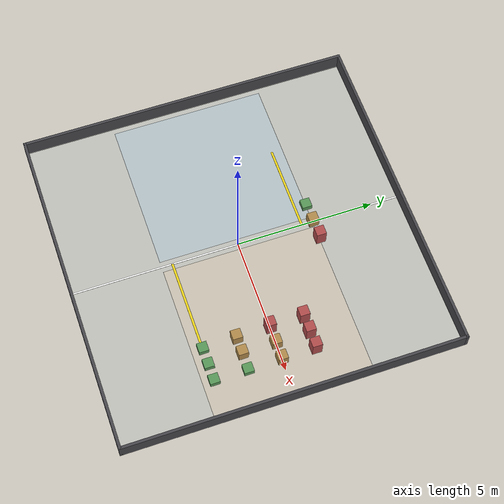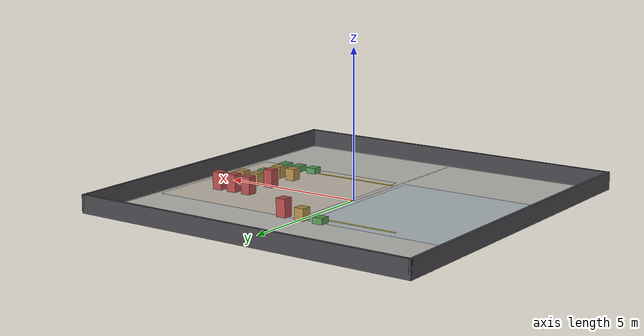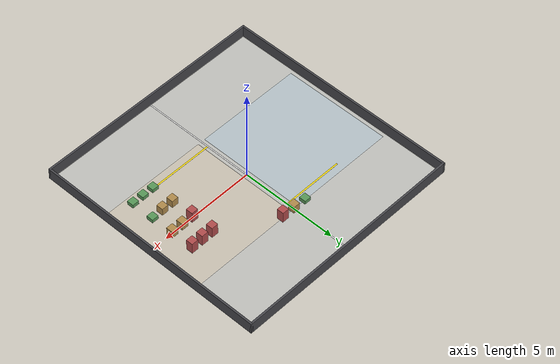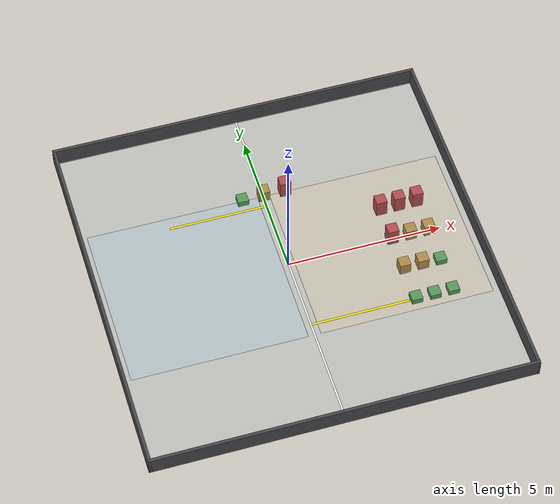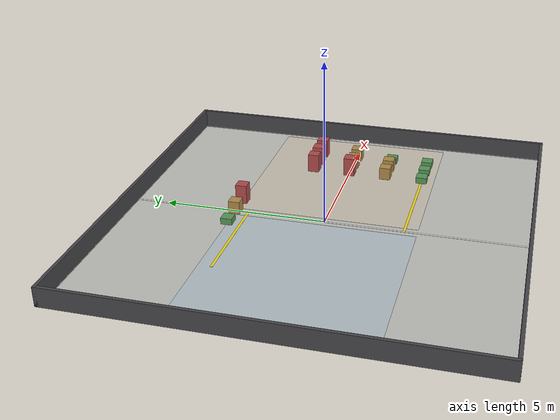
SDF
<?xml version="1.0" ?>
<sdf version="1.9">
  <world name="robotcon_2026_arena">
    <plugin filename="gz-sim-physics-system" name="gz::sim::systems::Physics"/>
    <plugin filename="gz-sim-user-commands-system" name="gz::sim::systems::UserCommands"/>
    <plugin filename="gz-sim-scene-broadcaster-system" name="gz::sim::systems::SceneBroadcaster"/>
    <plugin filename="gz-sim-sensors-system" name="gz::sim::systems::Sensors"/>
    <plugin filename="gz-sim-imu-system" name="gz::sim::systems::Imu"/>

    <gravity>0 0 -9.81</gravity>

    <!-- Arena floor: 12m x 12m -->
    <model name="arena_floor">
      <static>true</static>
      <link name="floor_link">
        <collision name="floor_collision">
          <geometry>
            <plane>
              <normal>0 0 1</normal>
              <size>12 12</size>
            </plane>
          </geometry>
        </collision>
        <visual name="floor_visual">
          <geometry>
            <plane>
              <normal>0 0 1</normal>
              <size>12 12</size>
            </plane>
          </geometry>
          <material>
            <ambient>0.76 0.76 0.74 1</ambient>
            <diffuse>0.76 0.76 0.74 1</diffuse>
            <specular>0.1 0.1 0.1 1</specular>
          </material>
        </visual>
      </link>
    </model>

    <!-- Markings and one-way guides (visual only) -->
    <model name="arena_markings">
      <static>true</static>
      <link name="markings_link">
        <visual name="left_zone">
          <pose>-3.0 0 0.002 0 0 0</pose>
          <geometry>
            <box>
              <size>5.6 5.6 0.002</size>
            </box>
          </geometry>
          <material>
            <ambient>0.72 0.82 0.88 0.5</ambient>
            <diffuse>0.72 0.82 0.88 0.5</diffuse>
          </material>
        </visual>
        <visual name="right_zone">
          <pose>3.0 0 0.002 0 0 0</pose>
          <geometry>
            <box>
              <size>5.6 5.6 0.002</size>
            </box>
          </geometry>
          <material>
            <ambient>0.88 0.82 0.72 0.5</ambient>
            <diffuse>0.88 0.82 0.72 0.5</diffuse>
          </material>
        </visual>
        <visual name="center_line">
          <pose>0 0 0.003 0 0 0</pose>
          <geometry>
            <box>
              <size>0.06 12 0.003</size>
            </box>
          </geometry>
          <material>
            <ambient>1 1 1 1</ambient>
            <diffuse>1 1 1 1</diffuse>
          </material>
        </visual>
        <visual name="one_way_lane_left">
          <pose>-1.6 2.4 0.003 0 0 0</pose>
          <geometry>
            <box>
              <size>3.2 0.08 0.003</size>
            </box>
          </geometry>
          <material>
            <ambient>0.95 0.85 0.1 1</ambient>
            <diffuse>0.95 0.85 0.1 1</diffuse>
          </material>
        </visual>
        <visual name="one_way_lane_right">
          <pose>1.6 -2.4 0.003 0 0 0</pose>
          <geometry>
            <box>
              <size>3.2 0.08 0.003</size>
            </box>
          </geometry>
          <material>
            <ambient>0.95 0.85 0.1 1</ambient>
            <diffuse>0.95 0.85 0.1 1</diffuse>
          </material>
        </visual>
      </link>
    </model>

    <!-- Arena fences -->
    <model name="arena_walls">
      <static>true</static>
      <link name="walls_link">
        <collision name="north_collision">
          <pose>0 6.05 0.30 0 0 0</pose>
          <geometry>
            <box>
              <size>12.2 0.10 0.60</size>
            </box>
          </geometry>
        </collision>
        <visual name="north_visual">
          <pose>0 6.05 0.30 0 0 0</pose>
          <geometry>
            <box>
              <size>12.2 0.10 0.60</size>
            </box>
          </geometry>
          <material>
            <ambient>0.28 0.28 0.30 1</ambient>
            <diffuse>0.28 0.28 0.30 1</diffuse>
          </material>
        </visual>

        <collision name="south_collision">
          <pose>0 -6.05 0.30 0 0 0</pose>
          <geometry>
            <box>
              <size>12.2 0.10 0.60</size>
            </box>
          </geometry>
        </collision>
        <visual name="south_visual">
          <pose>0 -6.05 0.30 0 0 0</pose>
          <geometry>
            <box>
              <size>12.2 0.10 0.60</size>
            </box>
          </geometry>
          <material>
            <ambient>0.28 0.28 0.30 1</ambient>
            <diffuse>0.28 0.28 0.30 1</diffuse>
          </material>
        </visual>

        <collision name="west_collision">
          <pose>-6.05 0 0.30 0 0 0</pose>
          <geometry>
            <box>
              <size>0.10 12.2 0.60</size>
            </box>
          </geometry>
        </collision>
        <visual name="west_visual">
          <pose>-6.05 0 0.30 0 0 0</pose>
          <geometry>
            <box>
              <size>0.10 12.2 0.60</size>
            </box>
          </geometry>
          <material>
            <ambient>0.28 0.28 0.30 1</ambient>
            <diffuse>0.28 0.28 0.30 1</diffuse>
          </material>
        </visual>

        <collision name="east_collision">
          <pose>6.05 0 0.30 0 0 0</pose>
          <geometry>
            <box>
              <size>0.10 12.2 0.60</size>
            </box>
          </geometry>
        </collision>
        <visual name="east_visual">
          <pose>6.05 0 0.30 0 0 0</pose>
          <geometry>
            <box>
              <size>0.10 12.2 0.60</size>
            </box>
          </geometry>
          <material>
            <ambient>0.28 0.28 0.30 1</ambient>
            <diffuse>0.28 0.28 0.30 1</diffuse>
          </material>
        </visual>
      </link>
    </model>

    <!-- Middle test blocks for climbing -->
    <model name="middle_block_low">
      <static>true</static>
      <pose>-0.70 2.80 0.10 0 0 0</pose>
      <link name="link">
        <collision name="collision">
          <geometry>
            <box>
              <size>0.35 0.35 0.20</size>
            </box>
          </geometry>
        </collision>
        <visual name="visual">
          <geometry>
            <box>
              <size>0.35 0.35 0.20</size>
            </box>
          </geometry>
          <material>
            <ambient>0.35 0.60 0.35 1</ambient>
            <diffuse>0.35 0.60 0.35 1</diffuse>
          </material>
        </visual>
      </link>
    </model>
    <model name="middle_block_mid">
      <static>true</static>
      <pose>0.00 2.80 0.20 0 0 0</pose>
      <link name="link">
        <collision name="collision">
          <geometry>
            <box>
              <size>0.35 0.35 0.40</size>
            </box>
          </geometry>
        </collision>
        <visual name="visual">
          <geometry>
            <box>
              <size>0.35 0.35 0.40</size>
            </box>
          </geometry>
          <material>
            <ambient>0.70 0.55 0.30 1</ambient>
            <diffuse>0.70 0.55 0.30 1</diffuse>
          </material>
        </visual>
      </link>
    </model>
    <model name="middle_block_high">
      <static>true</static>
      <pose>0.70 2.80 0.30 0 0 0</pose>
      <link name="link">
        <collision name="collision">
          <geometry>
            <box>
              <size>0.35 0.35 0.60</size>
            </box>
          </geometry>
        </collision>
        <visual name="visual">
          <geometry>
            <box>
              <size>0.35 0.35 0.60</size>
            </box>
          </geometry>
          <material>
            <ambient>0.70 0.30 0.30 1</ambient>
            <diffuse>0.70 0.30 0.30 1</diffuse>
          </material>
        </visual>
      </link>
    </model>

    <!-- Right team blocks: 12 blocks (4x200mm, 4x400mm, 4x600mm) -->
    <model name="right_block_01">
      <static>true</static>
      <pose>4.60 -2.40 0.10 0 0 0</pose>
      <link name="link">
        <collision name="c">
          <geometry>
            <box>
              <size>0.35 0.35 0.20</size>
            </box>
          </geometry>
        </collision>
        <visual name="v">
          <geometry>
            <box>
              <size>0.35 0.35 0.20</size>
            </box>
          </geometry>
          <material>
            <ambient>0.35 0.60 0.35 1</ambient>
            <diffuse>0.35 0.60 0.35 1</diffuse>
          </material>
        </visual>
      </link>
    </model>
    <model name="right_block_02">
      <static>true</static>
      <pose>4.00 -2.40 0.10 0 0 0</pose>
      <link name="link">
        <collision name="c">
          <geometry>
            <box>
              <size>0.35 0.35 0.20</size>
            </box>
          </geometry>
        </collision>
        <visual name="v">
          <geometry>
            <box>
              <size>0.35 0.35 0.20</size>
            </box>
          </geometry>
          <material>
            <ambient>0.35 0.60 0.35 1</ambient>
            <diffuse>0.35 0.60 0.35 1</diffuse>
          </material>
        </visual>
      </link>
    </model>
    <model name="right_block_03">
      <static>true</static>
      <pose>3.40 -2.40 0.10 0 0 0</pose>
      <link name="link">
        <collision name="c">
          <geometry>
            <box>
              <size>0.35 0.35 0.20</size>
            </box>
          </geometry>
        </collision>
        <visual name="v">
          <geometry>
            <box>
              <size>0.35 0.35 0.20</size>
            </box>
          </geometry>
          <material>
            <ambient>0.35 0.60 0.35 1</ambient>
            <diffuse>0.35 0.60 0.35 1</diffuse>
          </material>
        </visual>
      </link>
    </model>
    <model name="right_block_04">
      <static>true</static>
      <pose>4.60 -1.20 0.10 0 0 0</pose>
      <link name="link">
        <collision name="c">
          <geometry>
            <box>
              <size>0.35 0.35 0.20</size>
            </box>
          </geometry>
        </collision>
        <visual name="v">
          <geometry>
            <box>
              <size>0.35 0.35 0.20</size>
            </box>
          </geometry>
          <material>
            <ambient>0.35 0.60 0.35 1</ambient>
            <diffuse>0.35 0.60 0.35 1</diffuse>
          </material>
        </visual>
      </link>
    </model>

    <model name="right_block_05">
      <static>true</static>
      <pose>4.00 -1.20 0.20 0 0 0</pose>
      <link name="link">
        <collision name="c">
          <geometry>
            <box>
              <size>0.35 0.35 0.40</size>
            </box>
          </geometry>
        </collision>
        <visual name="v">
          <geometry>
            <box>
              <size>0.35 0.35 0.40</size>
            </box>
          </geometry>
          <material>
            <ambient>0.70 0.55 0.30 1</ambient>
            <diffuse>0.70 0.55 0.30 1</diffuse>
          </material>
        </visual>
      </link>
    </model>
    <model name="right_block_06">
      <static>true</static>
      <pose>3.40 -1.20 0.20 0 0 0</pose>
      <link name="link">
        <collision name="c">
          <geometry>
            <box>
              <size>0.35 0.35 0.40</size>
            </box>
          </geometry>
        </collision>
        <visual name="v">
          <geometry>
            <box>
              <size>0.35 0.35 0.40</size>
            </box>
          </geometry>
          <material>
            <ambient>0.70 0.55 0.30 1</ambient>
            <diffuse>0.70 0.55 0.30 1</diffuse>
          </material>
        </visual>
      </link>
    </model>
    <model name="right_block_07">
      <static>true</static>
      <pose>4.60 0.00 0.20 0 0 0</pose>
      <link name="link">
        <collision name="c">
          <geometry>
            <box>
              <size>0.35 0.35 0.40</size>
            </box>
          </geometry>
        </collision>
        <visual name="v">
          <geometry>
            <box>
              <size>0.35 0.35 0.40</size>
            </box>
          </geometry>
          <material>
            <ambient>0.70 0.55 0.30 1</ambient>
            <diffuse>0.70 0.55 0.30 1</diffuse>
          </material>
        </visual>
      </link>
    </model>
    <model name="right_block_08">
      <static>true</static>
      <pose>4.00 0.00 0.20 0 0 0</pose>
      <link name="link">
        <collision name="c">
          <geometry>
            <box>
              <size>0.35 0.35 0.40</size>
            </box>
          </geometry>
        </collision>
        <visual name="v">
          <geometry>
            <box>
              <size>0.35 0.35 0.40</size>
            </box>
          </geometry>
          <material>
            <ambient>0.70 0.55 0.30 1</ambient>
            <diffuse>0.70 0.55 0.30 1</diffuse>
          </material>
        </visual>
      </link>
    </model>

    <model name="right_block_09">
      <static>true</static>
      <pose>3.40 0.00 0.30 0 0 0</pose>
      <link name="link">
        <collision name="c">
          <geometry>
            <box>
              <size>0.35 0.35 0.60</size>
            </box>
          </geometry>
        </collision>
        <visual name="v">
          <geometry>
            <box>
              <size>0.35 0.35 0.60</size>
            </box>
          </geometry>
          <material>
            <ambient>0.70 0.30 0.30 1</ambient>
            <diffuse>0.70 0.30 0.30 1</diffuse>
          </material>
        </visual>
      </link>
    </model>
    <model name="right_block_10">
      <static>true</static>
      <pose>4.60 1.20 0.30 0 0 0</pose>
      <link name="link">
        <collision name="c">
          <geometry>
            <box>
              <size>0.35 0.35 0.60</size>
            </box>
          </geometry>
        </collision>
        <visual name="v">
          <geometry>
            <box>
              <size>0.35 0.35 0.60</size>
            </box>
          </geometry>
          <material>
            <ambient>0.70 0.30 0.30 1</ambient>
            <diffuse>0.70 0.30 0.30 1</diffuse>
          </material>
        </visual>
      </link>
    </model>
    <model name="right_block_11">
      <static>true</static>
      <pose>4.00 1.20 0.30 0 0 0</pose>
      <link name="link">
        <collision name="c">
          <geometry>
            <box>
              <size>0.35 0.35 0.60</size>
            </box>
          </geometry>
        </collision>
        <visual name="v">
          <geometry>
            <box>
              <size>0.35 0.35 0.60</size>
            </box>
          </geometry>
          <material>
            <ambient>0.70 0.30 0.30 1</ambient>
            <diffuse>0.70 0.30 0.30 1</diffuse>
          </material>
        </visual>
      </link>
    </model>
    <model name="right_block_12">
      <static>true</static>
      <pose>3.40 1.20 0.30 0 0 0</pose>
      <link name="link">
        <collision name="c">
          <geometry>
            <box>
              <size>0.35 0.35 0.60</size>
            </box>
          </geometry>
        </collision>
        <visual name="v">
          <geometry>
            <box>
              <size>0.35 0.35 0.60</size>
            </box>
          </geometry>
          <material>
            <ambient>0.70 0.30 0.30 1</ambient>
            <diffuse>0.70 0.30 0.30 1</diffuse>
          </material>
        </visual>
      </link>
    </model>

  </world>
</sdf>
